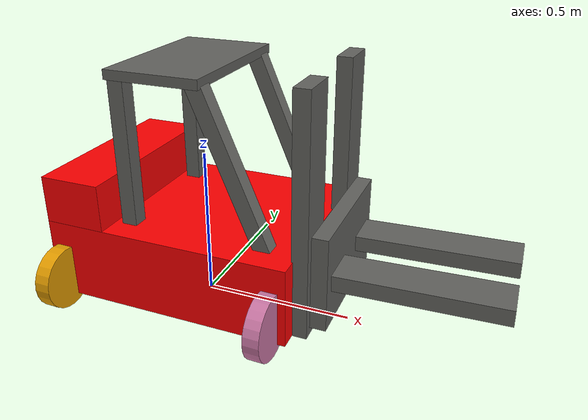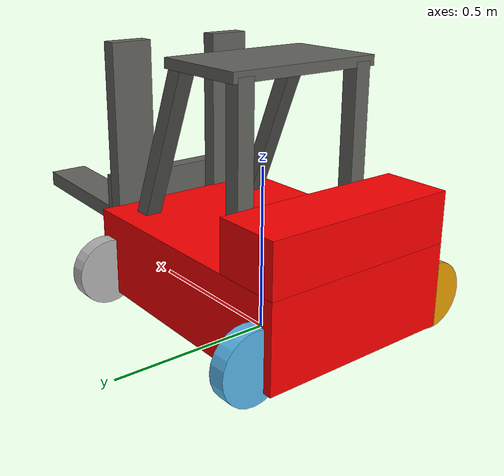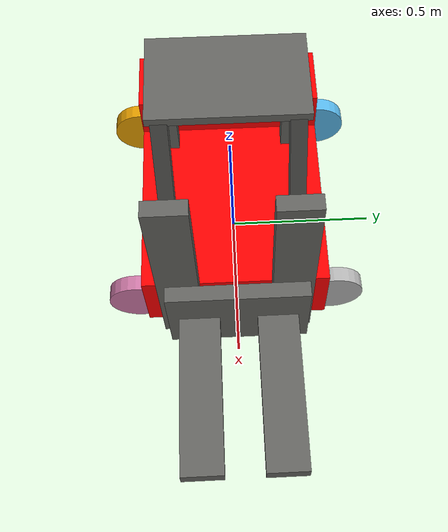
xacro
<?xml version="1.0"?>
<robot xmlns:xacro="http://wiki.ros.org/xacro" name="forklift">

  <!-- JointStatePublisher publishes joint state information for the model.
         In future versions of Gazebo, replace 'ignition-gazebo' with 'gz-sim' and
         'ignition::gazebo' with 'gz::sim'
    -->
    <gazebo>
      <plugin filename="gz-sim-joint-state-publisher-system" name="gz::sim::systems::JointStatePublisher">
          <topic>joint_states</topic>
      </plugin>
  </gazebo>

  <!-- Base Link -->
  <link name="base_link">
    <visual>
      <geometry>
        <box size="0.8 0.6 0.25" />
      </geometry>
      <origin xyz="0 0 0.2" rpy="0 0 0"/>
      <material name="red">
        <color rgba="1.0 0 0 1.0" />
      </material>
    </visual>
    <collision>
      <geometry>
        <box size="0.8 0.6 0.25" />
      </geometry>
    </collision>
    <inertial>
      <mass value="100.0" />
      <origin xyz="0 0 0" />
      <inertia ixx="0.1" ixy="0.0" ixz="0.0" iyy="0.1" iyz="0.0" izz="0.1" />
    </inertial>
  </link>

  <!-- Cockpit Beam 1 -->
  <link name="cockpit_beam_1">
    <visual>
      <geometry>
        <box size="0.05 0.05 0.53" />
      </geometry>
      <material name="gray">
        <color rgba="0.388 0.388 0.373 1" />
      </material>
    </visual>
    <collision>
      <geometry>
        <box size="0.05 0.05 0.53" />
      </geometry>
    </collision>
    <inertial>
      <mass value="20.0" />
      <origin xyz="0 0 0" />
      <inertia ixx="0.1" ixy="0.0" ixz="0.0" iyy="0.1" iyz="0.0" izz="0.1" />
    </inertial>
  </link>

  <!-- Cockpit Beam 2 -->
  <link name="cockpit_beam_2">
    <visual>
      <geometry>
        <box size="0.05 0.05 0.54" />
      </geometry>
      <material name="gray">
        <color rgba="0.388 0.388 0.373 1" />
      </material>
    </visual>
    <collision>
      <geometry>
        <box size="0.05 0.05 0.54" />
      </geometry>
    </collision>
    <inertial>
      <mass value="20.0" />
      <origin xyz="0 0 0" />
      <inertia ixx="0.1" ixy="0.0" ixz="0.0" iyy="0.1" iyz="0.0" izz="0.1" />
    </inertial>
  </link>

  <!-- Cockpit Beam 3 -->
  <link name="cockpit_beam_3">
    <visual>
      <geometry>
        <box size="0.05 0.05 0.5" />
      </geometry>
      <material name="gray">
        <color rgba="0.388 0.388 0.373 1" />
      </material>
    </visual>
    <collision>
      <geometry>
       <box size="0.05 0.05 0.5" />
      </geometry>
    </collision>
    <inertial>
      <mass value="20.0" />
      <origin xyz="0 0 0" />
      <inertia ixx="0.1" ixy="0.0" ixz="0.0" iyy="0.1" iyz="0.0" izz="0.1" />
    </inertial>
  </link>

  <!-- Roof -->
  <link name="roof">
    <visual>
      <geometry>
        <box size="0.3 0.48 0.03" />
      </geometry>
      <material name="gray">
        <color rgba="0.388 0.388 0.373 1" />
      </material>
    </visual>
    <collision>
      <geometry>
        <box size="0.3 0.48 0.03" />
      </geometry>
    </collision>
    <inertial>
      <mass value="0.1" />
      <origin xyz="0 0 0" />
      <inertia ixx="0" ixy="0.0" ixz="0.0" iyy="0" iyz="0.0" izz="0" />
    </inertial>
  </link>

  <!-- Cockpit Beam 4 -->
  <link name="cockpit_beam_4">
    <visual>
      <geometry>
        <box size="0.05 0.05 0.5" />
      </geometry>
      <material name="gray">
        <color rgba="0.388 0.388 0.373 1" />
      </material>
    </visual>
    <collision>
      <geometry>
        <box size="0.05 0.05 0.5" />
      </geometry>
    </collision>
    <inertial>
      <mass value="20.0" />
      <origin xyz="0 0 0" />
      <inertia ixx="0.1" ixy="0.0" ixz="0.0" iyy="0.1" iyz="0.0" izz="0.1" />
    </inertial>
  </link>

  <!-- Wheel 1 -->
  <link name="wheel_1">
    <visual>
      <origin xyz="0 0 0" rpy="0 -1.55 0" />
      <geometry>
        <cylinder radius="0.1" length="0.05" />
      </geometry>
    </visual>
    <collision>
      <geometry>
        <cylinder radius="0.1" length="0.05" />
      </geometry>
    </collision>
    <inertial>
      <mass value="5.0" />
      <origin xyz="0 0 0" />
      <inertia ixx="0.02" ixy="0.0" ixz="0.0" iyy="0.02" iyz="0.0" izz="0.02" />
    </inertial>
  </link>

  <!-- Wheel 2 -->
  <link name="wheel_2">
    <visual>
      <origin xyz="0 0 0" rpy="0 1.55 0" />
      <geometry>
        <cylinder radius="0.1" length="0.05" />
      </geometry>
    </visual>
    <collision>
      <geometry>
        <cylinder radius="0.1" length="0.05" />
      </geometry>
    </collision>
    <inertial>
      <mass value="5.0" />
      <origin xyz="0 0 0" />
      <inertia ixx="0.02" ixy="0.0" ixz="0.0" iyy="0.02" iyz="0.0" izz="0.02" />
    </inertial>
  </link>

  <!-- Wheel 3 -->
  <link name="wheel_3">
    <visual>
      <origin xyz="0 0 0" rpy="0 -1.55 0" />
      <geometry>
        <cylinder radius="0.1" length="0.05" />
      </geometry>
    </visual>
    <collision>
      <geometry>
        <cylinder radius="0.1" length="0.05" />
      </geometry>
    </collision>
    <inertial>
      <mass value="5.0" />
      <origin xyz="0 0 0" />
      <inertia ixx="0.02" ixy="0.0" ixz="0.0" iyy="0.02" iyz="0.0" izz="0.02" />
    </inertial>
  </link>

  <!-- Wheel 4 -->
  <link name="wheel_4">
    <visual>
      <origin xyz="0 0 0" rpy="0 1.55 0" />
      <geometry>
        <cylinder radius="0.1" length="0.05" />
      </geometry>
    </visual>
    <collision>
      <geometry>
        <cylinder radius="0.1" length="0.05" />
      </geometry>
    </collision>
    <inertial>
      <mass value="5.0" />
      <origin xyz="0 0 0" />
      <inertia ixx="0.02" ixy="0.0" ixz="0.0" iyy="0.02" iyz="0.0" izz="0.02" />
    </inertial>
  </link>

 <!-- kisko 1 -->
  <link name="fork_plate_slider_1">
    <visual>
      <geometry>
        <box size="0.05 0.13 0.75" />
      </geometry>

      <material name="gray">
        <color rgba="0.388 0.388 0.373 1" />
      </material>
    </visual>
    <collision>
      <geometry>
        <box size="0.05 0.13 0.75" />
      </geometry>
    </collision>
    <inertial>
      <mass value="20.0" />
      <origin xyz="0 0 0" />
      <inertia ixx="0.1" ixy="0.0" ixz="0.0" iyy="0.1" iyz="0.0" izz="0.1" />
    </inertial>
  </link>

<!-- kisko 2 -->
  <link name="fork_plate_slider_2">
    <visual>
      <geometry>
        <box size="0.05 0.13 0.75" />
      </geometry>
      <material name="gray">
        <color rgba="0.388 0.388 0.373 1" />
      </material>
    </visual>
    <collision>
      <geometry>
         <box size="0.05 0.13 0.75" />
      </geometry>
    </collision>
    <inertial>
      <mass value="20.0" />
      <origin xyz="0 0 0" />
      <inertia ixx="0.1" ixy="0.0" ixz="0.0" iyy="0.1" iyz="0.0" izz="0.1" />
    </inertial>
  </link>

    <!-- haarukka 1 -->
  <link name="fork_1">
    <visual>
      <geometry>
        <box size="0.05 0.13 0.5" />
      </geometry>
      <material name="gray">
        <color rgba="0.388 0.388 0.373 1" />
      </material>
      <origin xyz="0.275 -0.2 -0.2" rpy="0 -1.6 0" />
    </visual>
    <collision>
      <geometry>
        <box size="0.05 0.13 0.5" />
      </geometry>
    </collision>
    <inertial>
      <mass value="0.1" />
      <origin xyz="0 0 0" />
      <inertia ixx="0.0" ixy="0.0" ixz="0.0" iyy="0.0" iyz="0.0" izz="0.0" />
    </inertial>
  </link>

      <!-- haarukka 2 -->
  <link name="fork_2">
    <visual>
      <geometry>
        <box size="0.05 0.13 0.5" />
      </geometry>
      <material name="gray">
        <color rgba="0.388 0.388 0.373 1" />
      </material>
      <origin xyz="0.275 -0.15 -0.2" rpy="0 -1.6 0" />
    </visual>
    <collision>
      <geometry>
        <box size="0.05 0.13 0.5" />
      </geometry>
    </collision>
    <inertial>
      <mass value="0.1" />
      <origin xyz="0 0 0" />
      <inertia ixx="0.0" ixy="0.0" ixz="0.0" iyy="0.0" iyz="0.0" izz="0.0" />
    </inertial>
  </link>

      <!-- haarukkakisko -->
  <link name="fork_plate">
    <visual>
      <geometry>
        <box size="0.05 0.45 0.3" />
      </geometry>
      <material name="gray">
        <color rgba="0.388 0.388 0.373 1" />
      </material>
      <origin xyz="0 -0.175 -0.2" rpy="0 0 0"/>
      </visual>
    <collision>
      <geometry>
        <box size="0.05 0.13 0.5" />
      </geometry>
    </collision>
    <inertial>
      <mass value="0.1" />
      <origin xyz="0 0 0" />
      <inertia ixx="0.0" ixy="0.0" ixz="0.0" iyy="0.0" iyz="0.0" izz="0.0" />
    </inertial>
  </link>

   <!-- Base Link -->
  <link name="motor">
    <visual>
      <geometry>
        <box size="0.2 0.6 0.15" />
      </geometry>
      <material name="red">
        <color rgba="1.0 0 0 1.0" />
      </material>
    </visual>
    <collision>
      <geometry>
        <box size="0.8 0.6 0.25" />
      </geometry>
    </collision>
    <inertial>
      <mass value="50.0" />
      <origin xyz="0 0 0" />
      <inertia ixx="0.2" ixy="0.0" ixz="0.0" iyy="0.2" iyz="0.0" izz="0.2" />
    </inertial>
  </link>

  <!-- Connect the fork to the slider-->
  <joint name="motor_to_base" type="fixed">
    <parent link="base_link" />
    <child link="motor" />
    <origin xyz="-0.3 0 0.4" rpy="0 0 0" />
  </joint>

     <!-- Connect the fork 2 to plate-->
  <joint name="fork_2_to_plate" type="fixed">
    <parent link="fork_plate" />
    <child link="fork_2" />
    <origin xyz="0 -0.15 0" rpy="0 0 0" />
  </joint>

    <!-- Connect the fork 1 to plate-->
  <joint name="fork_1_to_plate" type="fixed">
    <parent link="fork_plate" />
    <child link="fork_1" />
    <origin xyz="0 0.15 0" rpy="0 0 0" />
  </joint>

    <!-- Joints connecting wheels to base_link -->
  <joint name="fork_slider_2_to_base" type="fixed">
    <parent link="base_link" />
    <child link="fork_plate_slider_2" />
    <origin xyz="0.42 -0.18 0.45" rpy="0 0 0" />
  </joint>

    <!-- Joints connecting wheels to base_link -->
  <joint name="fork_slider_1_to_base" type="fixed">
    <parent link="base_link" />
    <child link="fork_plate_slider_1" />
    <origin xyz="0.42 0.18 0.45" rpy="0 0 0" />
  </joint>

  <!-- Joints connecting base_link to wheels -->
  <joint name="base_to_wheel_1" type="continuous">
    <parent link="base_link" />
    <child link="wheel_1" />
    <origin xyz="0.35 -0.325 0.15" rpy="-1.55 0 0" />
    <axis xyz="0 0 1" />
    <limit effort="100000" lower="-6.28318530718" upper="6.28318530718" velocity="2.09439510239" />
  </joint>

  <joint name="base_to_wheel_2" type="continuous">
    <parent link="base_link" />
    <child link="wheel_2" />
    <origin xyz="0.35 0.325 0.15" rpy="-1.55 0 0" />
    <axis xyz="0 0 1" />
  </joint>

  <joint name="base_to_wheel_3" type="continuous">
    <parent link="base_link" />
    <child link="wheel_3" />
    <origin xyz="-0.35 -0.325 0.15" rpy="-1.55 0 0" />
    <axis xyz="0 0 1" />
  </joint>

  <joint name="base_to_wheel_4" type="continuous">
    <parent link="base_link" />
    <child link="wheel_4" />
    <origin xyz="-0.35 0.325 0.15" rpy="-1.55 0 0" />
    <axis xyz="0 0 1" />
  </joint>

  <!-- Joints connecting base_link to cockpit_beam_1 -->
  <joint name="base_to_cockpit_beam_1" type="fixed">
    <parent link="base_link" />
    <child link="cockpit_beam_1" />
    <origin xyz="0.2 -0.2 0.55" rpy="0 -0.4 0" />
  </joint>

  <!-- Joints connecting base_link to cockpit_beam_2 -->
  <joint name="base_to_cockpit_beam_2" type="fixed">
    <parent link="base_link" />
    <child link="cockpit_beam_2" />
    <origin xyz="0.2 0.2 0.55" rpy="0 -0.4 0" />
  </joint>

  <!-- Joints connecting base_link to cockpit_beam_3 -->
  <joint name="base_to_cockpit_beam_3" type="fixed">
    <parent link="base_link" />
    <child link="cockpit_beam_3" />
    <origin xyz="-0.15 0.2 0.55" rpy="0 0 0" />
  </joint>

  <!-- Joints connecting base_link to cockpit_beam_4 -->
  <joint name="base_to_cockpit_beam_4" type="fixed">
    <parent link="base_link" />
    <child link="cockpit_beam_4" />
    <origin xyz="-0.15 -0.2 0.55" rpy="0 0 0" />
  </joint>

  <!-- Joint connecting base_link to roof -->
  <joint name="roof_to_beam" type="fixed">
    <parent link="cockpit_beam_4" />
    <child link="roof" />
    <origin xyz="0.125 0.2 0.25" rpy="0 0 0" />
    <axis xyz="0 1 0"/>
    <limit lower="-0.2" upper="0.25" effort="10000" velocity="50.0"/>
  </joint>

<!-- Connect the fork plate to the slider-->
<joint name="fork_plate_to_slider" type="prismatic">
  <parent link="fork_plate_slider_1" />
  <child link="fork_plate" />
  <origin xyz="0.05 0 0" rpy="0 0 0" />
  <axis xyz="0 0 1"/>
  <limit lower="-0.025" upper="0.5" effort="1000000" velocity="20.0"/>
</joint>

  <gazebo>
    <plugin filename="gz-sim-joint-position-controller-system" name="gz::sim::systems::JointPositionController">
        <joint_name>fork_plate_to_slider</joint_name>
        <topic>fork_control</topic>
        <initial_position>-0.025</initial_position>
    </plugin>

    <plugin
            filename="gz-sim-pose-publisher-system"
            name="gz::sim::systems::PosePublisher">
            <publish_link_pose>true</publish_link_pose>
            <publish_collision_pose>false</publish_collision_pose>
            <publish_visual_pose>false</publish_visual_pose>
            <publish_nested_model_pose>false</publish_nested_model_pose>
        </plugin>

    <plugin
      filename="gz-sim-diff-drive-system"
      name="gz::sim::systems::DiffDrive">
        <left_joint>base_to_wheel_2</left_joint>
        <left_joint>base_to_wheel_4</left_joint>
        <right_joint>base_to_wheel_1</right_joint>
        <right_joint>base_to_wheel_3</right_joint>
        <wheel_separation>0.7</wheel_separation>
        <wheel_radius>0.4</wheel_radius>
        <odom_publish_frequency>1</odom_publish_frequency>
        <topic>cmd_vel</topic>
      </plugin>

</gazebo>

</robot>
